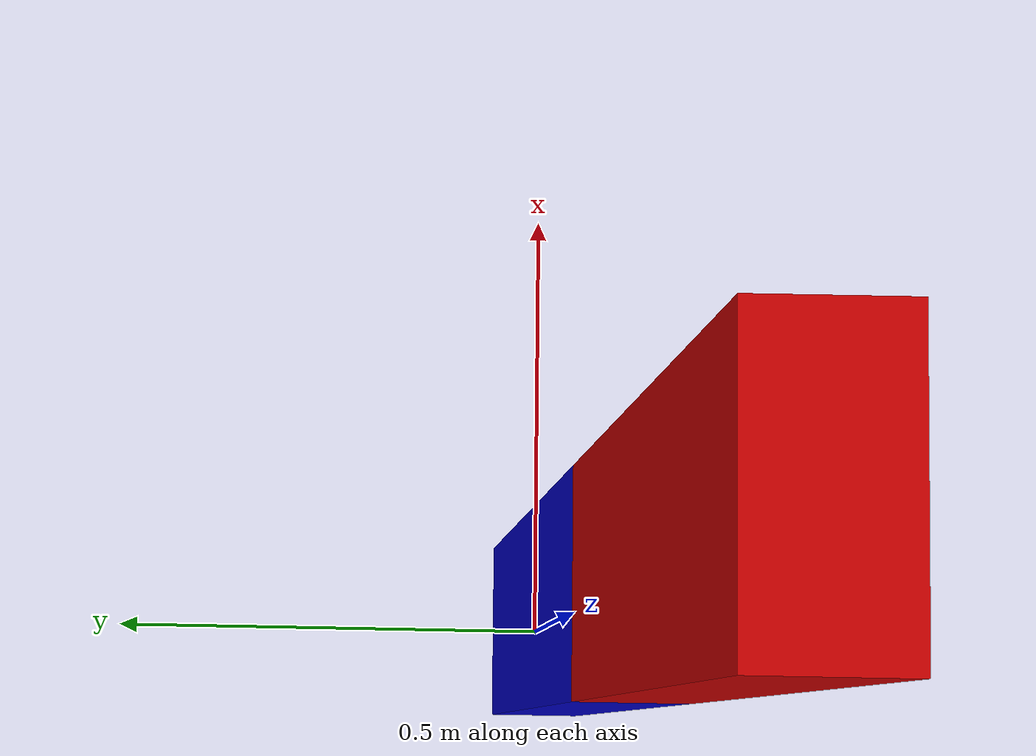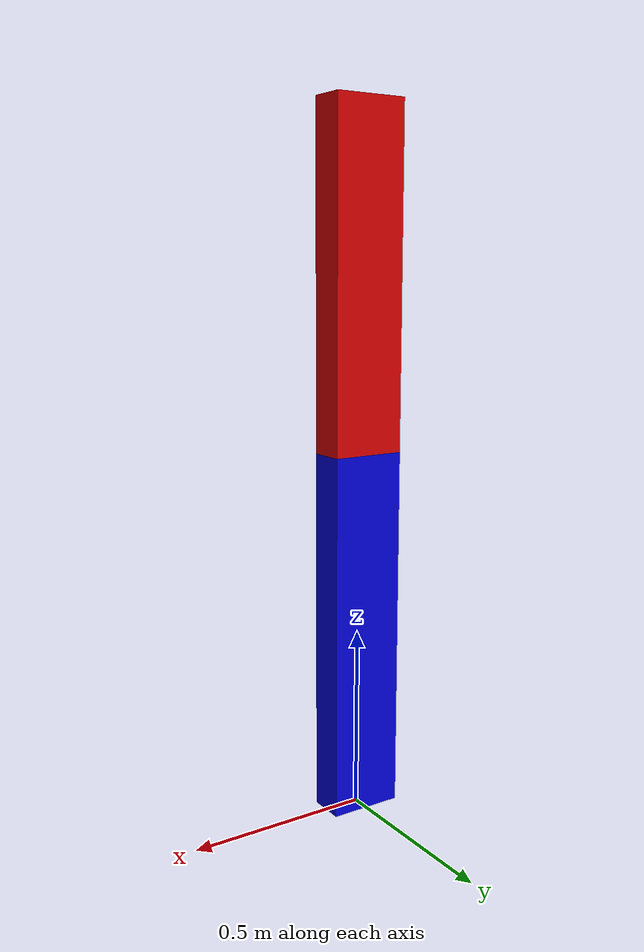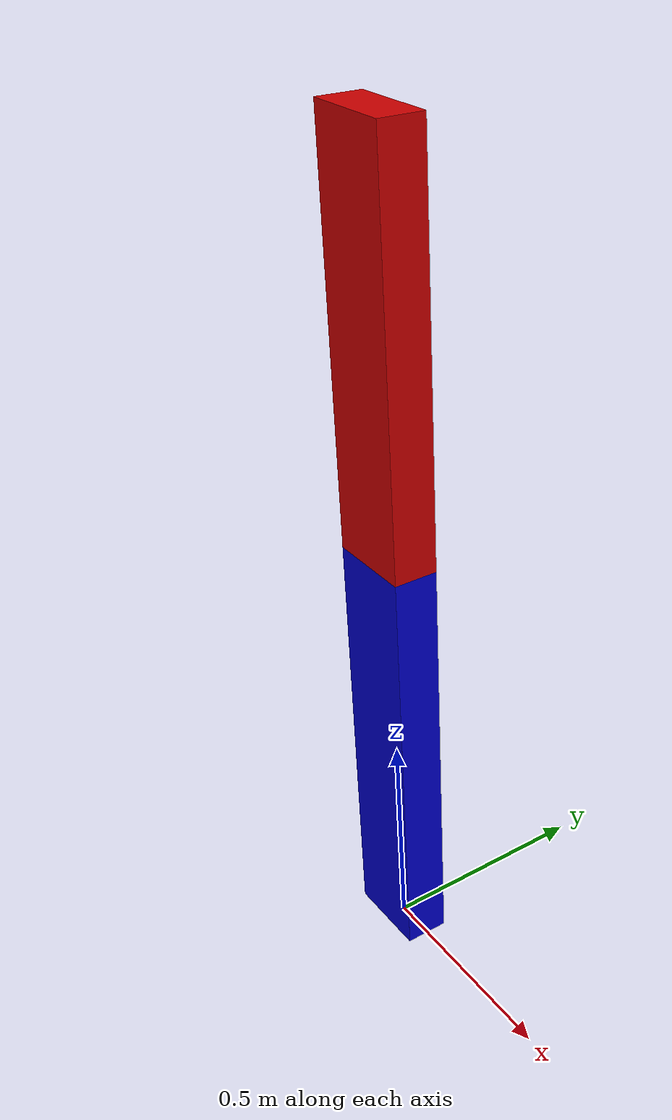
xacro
<?xml version="1.0"?>
<robot xmlns:xacro="http://www.ros.org/wiki/xacro" name="arm">

  <xacro:property name="L1" value="1" />
  <xacro:property name="L2" value=".9" />
  <xacro:property name="pi" value="3.1415" />

  <xacro:macro name="default_inertial" params="mass">
    <inertial>
        <origin xyz="0 0 0" rpy="0 0 0" />
        <mass value="${mass}" />
        <inertia ixx="1.0" ixy="0.0" ixz="0.0"
           iyy="1.0" iyz="0.0"
           izz="1.0" />
    </inertial>
  </xacro:macro>

  <link name="base_link"/>

  <link name="first_link">
    <visual>
      <origin xyz="0 0 ${L1/2}" rpy="0 0 0" />
      <geometry>
         <box size="0.2 0.1 ${L1}"/>
      </geometry>
      <material name="blue">
        <color rgba="0 0 .8 1"/>
      </material>
    </visual>
    <collision>
      <origin xyz="0 0 ${L1/2}" rpy="0 0 0" />
      <geometry>
         <box size="${L1} .2 .1"/>
      </geometry>
    </collision>
    <xacro:default_inertial mass="10"/>
  </link>

  <link name="second_link">
    <visual>
      <origin xyz="0 0 ${L2/2}" rpy="0 0 0" />
      <geometry>
         <box size="0.2 0.1 ${L2}"/>
      </geometry>
      <material name="red">
        <color rgba="0.8 0 0 1"/>
      </material>
    </visual>
    <collision>
      <origin xyz="0 0 0" rpy="0 0 0" />
      <geometry>
         <box size=".2 .1 ${L2}"/>
      </geometry>
    </collision>
    <xacro:default_inertial mass="10"/>
  </link>

  <link name="virtual_link">
    <visual>
      <origin xyz="0 0 0" rpy="0 0 0" />
      <geometry>
         <box size="0 0 0"/>
      </geometry>
    </visual>
  </link>

  <joint name="joint_virtual" type="fixed">
    <parent link="second_link"/>
    <child link="virtual_link"/>
    <origin xyz="0 0 ${L2}" rpy="0 0 0" />
  </joint>

  <joint name="joint_base_first" type="revolute">
    <parent link="base_link"/>
    <child link="first_link"/>
    <origin xyz="0 0 0" rpy="0 0 0" />
    <axis xyz="1 0 0" />
    <limit lower="-${pi}" upper="${pi}" effort="10" velocity="1.0"/>
  </joint>

  <joint name="joint_first_second" type="revolute">
    <parent link="first_link"/>
    <child link="second_link"/>
    <origin xyz="0 0 ${L1}" rpy="0 0 0" />
    <axis xyz="1 0 0" />
    <limit lower="-${pi}" upper="${pi}" effort="10" velocity="1.0"/>
  </joint>
</robot>
